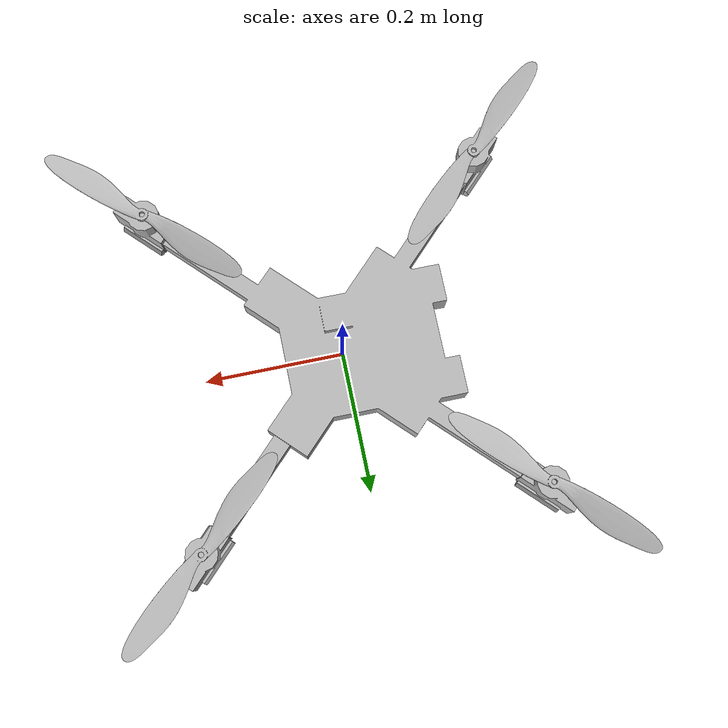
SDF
<sdf version='1.7'>
  <model name='Frog_V3.0_SIM_R01.SLDASM'>
    <link name='base_link'>
      <inertial>
        <pose>-0.007264 -0.000319 0.013744 0 -0 0</pose>
        <mass>1.88736</mass>
        <inertia>
          <ixx>0.00320015</ixx>
          <ixy>4.13447e-06</ixy>
          <ixz>4.25707e-06</ixz>
          <iyy>0.00318288</iyy>
          <iyz>2.56983e-05</iyz>
          <izz>0.00602951</izz>
        </inertia>
      </inertial>
      <collision name='base_link_collision'>
        <pose>0 0 0 0 -0 0</pose>
        <geometry>
          <mesh>
            <scale>1 1 1</scale>
            <uri>model://Frog_V3.0_SIM_R01.SLDASM/meshes/base_link.STL</uri>
          </mesh>
        </geometry>
      </collision>
      <collision name='base_link_fixed_joint_lump__fc_collision_1'>
        <pose>0 0 0.004619 0 -0 0</pose>
        <geometry>
          <mesh>
            <scale>1 1 1</scale>
            <uri>model://Frog_V3.0_SIM_R01.SLDASM/meshes/fc.STL</uri>
          </mesh>
        </geometry>
      </collision>
      <collision name='base_link_fixed_joint_lump__gps_collision_2'>
        <pose>0 -0.048 0.041102 0 -0 0</pose>
        <geometry>
          <mesh>
            <scale>1 1 1</scale>
            <uri>model://Frog_V3.0_SIM_R01.SLDASM/meshes/gps.STL</uri>
          </mesh>
        </geometry>
      </collision>
      <visual name='base_link_visual'>
        <pose>0 0 0 0 -0 0</pose>
        <geometry>
          <mesh>
            <scale>1 1 1</scale>
            <uri>model://Frog_V3.0_SIM_R01.SLDASM/meshes/base_link.STL</uri>
          </mesh>
        </geometry>
      </visual>
      <visual name='base_link_fixed_joint_lump__fc_visual_1'>
        <pose>0 0 0.004619 0 -0 0</pose>
        <geometry>
          <mesh>
            <scale>1 1 1</scale>
            <uri>model://Frog_V3.0_SIM_R01.SLDASM/meshes/fc.STL</uri>
          </mesh>
        </geometry>
      </visual>
      <visual name='base_link_fixed_joint_lump__gps_visual_2'>
        <pose>0 -0.048 0.041102 0 -0 0</pose>
        <geometry>
          <mesh>
            <scale>1 1 1</scale>
            <uri>model://Frog_V3.0_SIM_R01.SLDASM/meshes/gps.STL</uri>
          </mesh>
        </geometry>
      </visual>
    </link>
    <joint name='prop_1_joint' type='revolute'>
      <pose relative_to='base_link'>0.23934 -0.23941 0.071859 0 0 -0.74432</pose>
      <parent>base_link</parent>
      <child>prop_1</child>
      <axis>
        <xyz>0 0 -1</xyz>
        <limit>
          <lower>-1e-16</lower>
          <upper>1e-16</upper>
          <effort>100</effort>
          <velocity>100</velocity>
        </limit>
        <dynamics>
          <damping>0.004</damping>
          <friction>0</friction>
          <spring_reference>0</spring_reference>
          <spring_stiffness>0</spring_stiffness>
        </dynamics>
      </axis>
    </joint>
    <link name='prop_1'>
      <pose relative_to='prop_1_joint'>0 0 0 0 -0 0</pose>
      <inertial>
        <pose>4e-06 -5e-06 5.8e-05 0 -0 0</pose>
        <mass>0.0334721</mass>
        <inertia>
          <ixx>2.21817e-06</ixx>
          <ixy>1.38903e-06</ixy>
          <ixz>-4.52293e-07</ixz>
          <iyy>0.000200659</iyy>
          <iyz>1.05225e-07</iyz>
          <izz>0.000202649</izz>
        </inertia>
      </inertial>
      <collision name='prop_1_collision'>
        <pose>0 0 0 0 -0 0</pose>
        <geometry>
          <mesh>
            <scale>1 1 1</scale>
            <uri>model://Frog_V3.0_SIM_R01.SLDASM/meshes/prop_1.STL</uri>
          </mesh>
        </geometry>
      </collision>
      <visual name='prop_1_visual'>
        <pose>0 0 0 0 -0 0</pose>
        <geometry>
          <mesh>
            <scale>1 1 1</scale>
            <uri>model://Frog_V3.0_SIM_R01.SLDASM/meshes/prop_1.STL</uri>
          </mesh>
        </geometry>
      </visual>
    </link>
    <joint name='prop_2_joint' type='revolute'>
      <pose relative_to='base_link'>-0.23941 0.23934 0.071859 0 0 -0.775</pose>
      <parent>base_link</parent>
      <child>prop_2</child>
      <axis>
        <xyz>0 0 -1</xyz>
        <limit>
          <lower>-1e-16</lower>
          <upper>1e-16</upper>
          <effort>100</effort>
          <velocity>100</velocity>
        </limit>
        <dynamics>
          <damping>0.004</damping>
          <friction>0</friction>
          <spring_reference>0</spring_reference>
          <spring_stiffness>0</spring_stiffness>
        </dynamics>
      </axis>
    </joint>
    <link name='prop_2'>
      <pose relative_to='prop_2_joint'>0 0 0 0 -0 0</pose>
      <inertial>
        <pose>4e-06 -5e-06 5.8e-05 0 -0 0</pose>
        <mass>0.0334721</mass>
        <inertia>
          <ixx>2.21817e-06</ixx>
          <ixy>1.38903e-06</ixy>
          <ixz>-4.52293e-07</ixz>
          <iyy>0.000200659</iyy>
          <iyz>1.05225e-07</iyz>
          <izz>0.000202649</izz>
        </inertia>
      </inertial>
      <collision name='prop_2_collision'>
        <pose>0 0 0 0 -0 0</pose>
        <geometry>
          <mesh>
            <scale>1 1 1</scale>
            <uri>model://Frog_V3.0_SIM_R01.SLDASM/meshes/prop_2.STL</uri>
          </mesh>
        </geometry>
      </collision>
      <visual name='prop_2_visual'>
        <pose>0 0 0 0 -0 0</pose>
        <geometry>
          <mesh>
            <scale>1 1 1</scale>
            <uri>model://Frog_V3.0_SIM_R01.SLDASM/meshes/prop_2.STL</uri>
          </mesh>
        </geometry>
      </visual>
    </link>
    <joint name='prop_3_joint' type='revolute'>
      <pose relative_to='base_link'>0.239337 0.239411 0.071859 -0 -0.001844 -2.39705</pose>
      <parent>base_link</parent>
      <child>prop_3</child>
      <axis>
        <xyz>-0.001844 0 -0.999998</xyz>
        <limit>
          <lower>-1e-16</lower>
          <upper>1e-16</upper>
          <effort>100</effort>
          <velocity>100</velocity>
        </limit>
        <dynamics>
          <damping>0.004</damping>
          <friction>0</friction>
          <spring_reference>0</spring_reference>
          <spring_stiffness>0</spring_stiffness>
        </dynamics>
      </axis>
    </joint>
    <link name='prop_3'>
      <pose relative_to='prop_3_joint'>0 0 0 0 -0 0</pose>
      <inertial>
        <pose>-4e-06 -5e-06 5.8e-05 0 -0 0</pose>
        <mass>0.0376118</mass>
        <inertia>
          <ixx>2.49477e-06</ixx>
          <ixy>-1.50954e-06</ixy>
          <ixz>9.23535e-07</ixz>
          <iyy>0.000225469</iyy>
          <iyz>1.20921e-07</iyz>
          <izz>0.000227701</izz>
        </inertia>
      </inertial>
      <collision name='prop_3_collision'>
        <pose>0 0 0 0 -0 0</pose>
        <geometry>
          <mesh>
            <scale>1 1 1</scale>
            <uri>model://Frog_V3.0_SIM_R01.SLDASM/meshes/prop_3.STL</uri>
          </mesh>
        </geometry>
      </collision>
      <visual name='prop_3_visual'>
        <pose>0 0 0 0 -0 0</pose>
        <geometry>
          <mesh>
            <scale>1 1 1</scale>
            <uri>model://Frog_V3.0_SIM_R01.SLDASM/meshes/prop_3.STL</uri>
          </mesh>
        </geometry>
      </visual>
    </link>
    <joint name='prop_4_joint' type='revolute'>
      <pose relative_to='base_link'>-0.23941 -0.23934 0.071859 -0 -0.001844 -2.3664</pose>
      <parent>base_link</parent>
      <child>prop_4</child>
      <axis>
        <xyz>-0.001844 0 -1</xyz>
        <limit>
          <lower>-1e-16</lower>
          <upper>1e-16</upper>
          <effort>100</effort>
          <velocity>100</velocity>
        </limit>
        <dynamics>
          <damping>0.004</damping>
          <friction>0</friction>
          <spring_reference>0</spring_reference>
          <spring_stiffness>0</spring_stiffness>
        </dynamics>
      </axis>
    </joint>
    <link name='prop_4'>
      <pose relative_to='prop_4_joint'>0 0 0 0 -0 0</pose>
      <inertial>
        <pose>-4e-06 -5e-06 5.8e-05 0 -0 0</pose>
        <mass>0.0376118</mass>
        <inertia>
          <ixx>2.49477e-06</ixx>
          <ixy>-1.50954e-06</ixy>
          <ixz>9.23535e-07</ixz>
          <iyy>0.000225469</iyy>
          <iyz>1.20921e-07</iyz>
          <izz>0.000227701</izz>
        </inertia>
      </inertial>
      <collision name='prop_4_collision'>
        <pose>0 0 0 0 -0 0</pose>
        <geometry>
          <mesh>
            <scale>1 1 1</scale>
            <uri>model://Frog_V3.0_SIM_R01.SLDASM/meshes/prop_4.STL</uri>
          </mesh>
        </geometry>
      </collision>
      <visual name='prop_4_visual'>
        <pose>0 0 0 0 -0 0</pose>
        <geometry>
          <mesh>
            <scale>1 1 1</scale>
            <uri>model://Frog_V3.0_SIM_R01.SLDASM/meshes/prop_4.STL</uri>
          </mesh>
        </geometry>
      </visual>
    </link>
    <joint name='realsense_joint' type='revolute'>
      <pose relative_to='base_link'>0.052 0 0.0205 0 -0.55625 0</pose>
      <parent>base_link</parent>
      <child>realsense</child>
      <axis>
        <xyz>0 0 -1</xyz>
        <limit>
          <lower>-1e+16</lower>
          <upper>1e+16</upper>
        </limit>
        <dynamics>
          <damping>0.004</damping>
          <friction>0</friction>
          <spring_reference>0</spring_reference>
          <spring_stiffness>0</spring_stiffness>
        </dynamics>
      </axis>
    </joint>
    <link name='realsense'>
      <pose relative_to='realsense_joint'>0 0 0 0 -0 0</pose>
      <inertial>
        <pose>0.000257 0.000379 -8e-05 0 -0 0</pose>
        <mass>0.0820213</mass>
        <inertia>
          <ixx>5.67905e-05</ixx>
          <ixy>4.63673e-07</ixy>
          <ixz>-1.20817e-07</ixz>
          <iyy>7.62815e-06</iyy>
          <iyz>1.39366e-08</iyz>
          <izz>5.61631e-05</izz>
        </inertia>
      </inertial>
      <collision name='realsense_collision'>
        <pose>0 0 0 0 -0 0</pose>
        <geometry>
          <mesh>
            <scale>1 1 1</scale>
            <uri>model://Frog_V3.0_SIM_R01.SLDASM/meshes/realsense.STL</uri>
          </mesh>
        </geometry>
      </collision>
      <visual name='realsense_visual'>
        <pose>0 0 0 0 -0 0</pose>
        <geometry>
          <mesh>
            <scale>1 1 1</scale>
            <uri>model://Frog_V3.0_SIM_R01.SLDASM/meshes/realsense.STL</uri>
          </mesh>
        </geometry>
      </visual>
    </link>
  </model>
</sdf>
